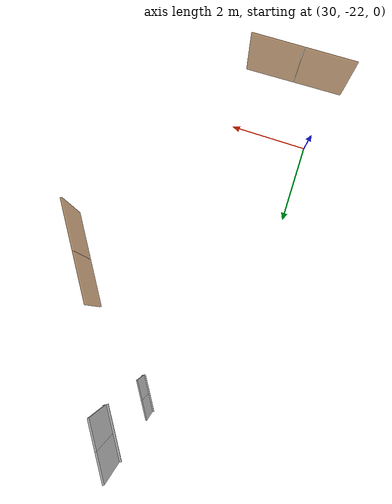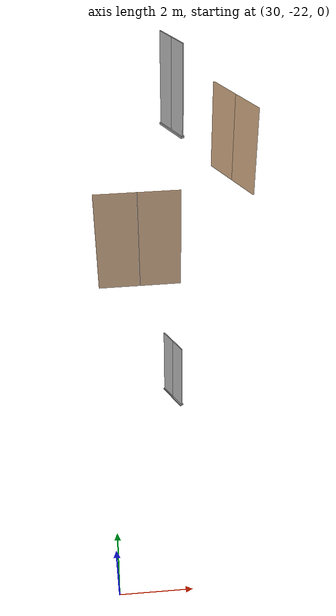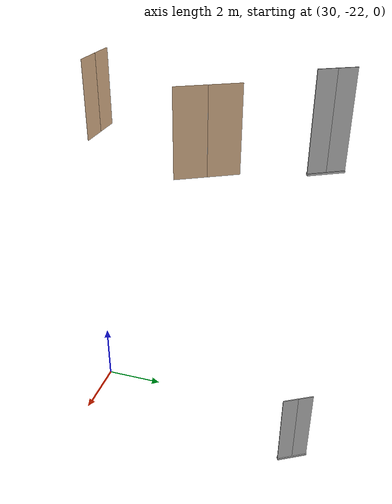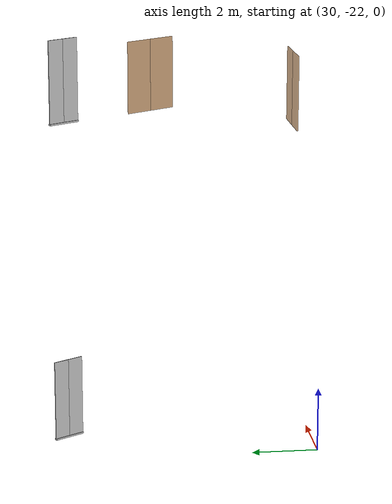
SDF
<sdf version="1.7">
 <world name="sim_world">
  <model name="L3_part5_2">
   <pose>30.878555559378373 -21.20493102822983 10.0 0 0 -3.120629776813505</pose>
   <link name="right">
    <pose>0.4216934099719255 0 1.11 0 0 0</pose>
    <visual name="right_visual">
     <geometry><box><size>0.833386819943851 0.03 2.2</size></box></geometry>
     <material>
      <ambient>0.5 0.25 0 0.6</ambient>
      <diffuse>0.5 0.25 0 0.6</diffuse>
      <pbr><metal><metalness>0.0</metalness></metal></pbr>
     </material>
    </visual>
    <collision name="right_collision">
     <geometry><box><size>0.833386819943851 0.03 2.2</size></box></geometry>
     <surface><contact><collide_bitmask>0x02</collide_bitmask></contact></surface>
    </collision>
    <inertial>
     <mass>50.0</mass>
     <inertia><ixx>20.17041666666667</ixx><iyy>23.060556631900525</iyy><izz>2.897639965233853</izz></inertia>
    </inertial>
   </link>
   <joint name="right_joint" type="revolute">
    <parent>world</parent>
    <child>right</child>
    <axis><xyz>0 0 1</xyz><limit><lower>0</lower><upper>1.57</upper></limit></axis>
    <pose>0.4216934099719255 0 0 0 0 0</pose>
   </joint>
   <link name="left">
    <pose>-0.4216934099719255 0 1.11 0 0 0</pose>
    <visual name="left_visual">
     <geometry><box><size>0.833386819943851 0.03 2.2</size></box></geometry>
     <material>
      <ambient>0.5 0.25 0 0.6</ambient>
      <diffuse>0.5 0.25 0 0.6</diffuse>
      <pbr><metal><metalness>0.0</metalness></metal></pbr>
     </material>
    </visual>
    <collision name="left_collision">
     <geometry><box><size>0.833386819943851 0.03 2.2</size></box></geometry>
     <surface><contact><collide_bitmask>0x02</collide_bitmask></contact></surface>
    </collision>
    <inertial>
     <mass>50.0</mass>
     <inertia><ixx>20.17041666666667</ixx><iyy>23.060556631900525</iyy><izz>2.897639965233853</izz></inertia>
    </inertial>
   </link>
   <joint name="left_joint" type="revolute">
    <parent>world</parent>
    <child>left</child>
    <axis><xyz>0 0 1</xyz><limit><lower>-1.57</lower><upper>0</upper></limit></axis>
    <pose>-0.4216934099719255 0 0 0 0 0</pose>
   </joint>
   <plugin name="register_component" filename="libregister_component.so">
    <component name="Door">
     <v_max_door>0.5</v_max_door>
     <a_max_door>0.3</a_max_door>
     <a_nom_door>0.15</a_nom_door>
     <dx_min_door>0.01</dx_min_door>
     <f_max_door>500.0</f_max_door>
     <ros_interface>true</ros_interface>
     <door name="L3_part5_2" type="DoubleSwingDoor" left_joint_name="left_joint" right_joint_name="right_joint"/>
    </component>
   </plugin>
  </model>
  <model name="L3_part5_3">
   <pose>33.311514173469774 -17.240855171249027 10.0 0 0 2.0969334913966207</pose>
   <link name="right">
    <pose>0.4157660587721567 0 1.11 0 0 0</pose>
    <visual name="right_visual">
     <geometry><box><size>0.8215321175443134 0.03 2.2</size></box></geometry>
     <material>
      <ambient>0.5 0.25 0 0.6</ambient>
      <diffuse>0.5 0.25 0 0.6</diffuse>
      <pbr><metal><metalness>0.0</metalness></metal></pbr>
     </material>
    </visual>
    <collision name="right_collision">
     <geometry><box><size>0.8215321175443134 0.03 2.2</size></box></geometry>
     <surface><contact><collide_bitmask>0x02</collide_bitmask></contact></surface>
    </collision>
    <inertial>
     <mass>50.0</mass>
     <inertia><ixx>20.17041666666667</ixx><iyy>22.978812583986855</iyy><izz>2.815895917320182</izz></inertia>
    </inertial>
   </link>
   <joint name="right_joint" type="revolute">
    <parent>world</parent>
    <child>right</child>
    <axis><xyz>0 0 -1</xyz><limit><lower>0</lower><upper>1.57</upper></limit></axis>
    <pose>0.4157660587721567 0 0 0 0 0</pose>
   </joint>
   <link name="left">
    <pose>-0.4157660587721567 0 1.11 0 0 0</pose>
    <visual name="left_visual">
     <geometry><box><size>0.8215321175443134 0.03 2.2</size></box></geometry>
     <material>
      <ambient>0.5 0.25 0 0.6</ambient>
      <diffuse>0.5 0.25 0 0.6</diffuse>
      <pbr><metal><metalness>0.0</metalness></metal></pbr>
     </material>
    </visual>
    <collision name="left_collision">
     <geometry><box><size>0.8215321175443134 0.03 2.2</size></box></geometry>
     <surface><contact><collide_bitmask>0x02</collide_bitmask></contact></surface>
    </collision>
    <inertial>
     <mass>50.0</mass>
     <inertia><ixx>20.17041666666667</ixx><iyy>22.978812583986855</iyy><izz>2.815895917320182</izz></inertia>
    </inertial>
   </link>
   <joint name="left_joint" type="revolute">
    <parent>world</parent>
    <child>left</child>
    <axis><xyz>0 0 -1</xyz><limit><lower>-1.57</lower><upper>0</upper></limit></axis>
    <pose>-0.4157660587721567 0 0 0 0 0</pose>
   </joint>
   <plugin name="register_component" filename="libregister_component.so">
    <component name="Door">
     <v_max_door>0.5</v_max_door>
     <a_max_door>0.3</a_max_door>
     <a_nom_door>0.15</a_nom_door>
     <dx_min_door>0.01</dx_min_door>
     <f_max_door>500.0</f_max_door>
     <ros_interface>true</ros_interface>
     <door name="L3_part5_3" type="DoubleSwingDoor" left_joint_name="left_joint" right_joint_name="right_joint"/>
    </component>
   </plugin>
  </model>
  <model name="ShaftDoor_lift1_L2_entrada_lift1_doors">
   <pose>32.074992194929564 -14.53258134317333 0.0 0 0 2.1</pose>
   <link name="right_door">
    <pose>0.25 0 1.25 0 0 0</pose>
    <visual name="right_door_visual">
     <geometry><box><size>0.5 0.03 2.5</size></box></geometry>
     <material>
      <ambient>0.5 0.5 0.5 1</ambient>
      <diffuse>0.7 0.7 0.7 1</diffuse>
      <specular>0.6 0.6 0.6 1</specular>
      <emissive>0.1 0.1 0.1 1</emissive>
     </material>
    </visual>
    <collision name="right_door_collision">
     <geometry><box><size>0.5 0.03 2.5</size></box></geometry>
     <surface><contact><collide_bitmask>0x02</collide_bitmask></contact></surface>
    </collision>
   </link>
   <link name="left_door">
    <pose>-0.25 0 1.25 0 0 0</pose>
    <visual name="left_door_visual">
     <geometry><box><size>0.5 0.03 2.5</size></box></geometry>
     <material>
      <ambient>0.5 0.5 0.5 1</ambient>
      <diffuse>0.7 0.7 0.7 1</diffuse>
      <specular>0.6 0.6 0.6 1</specular>
      <emissive>0.1 0.1 0.1 1</emissive>
     </material>
    </visual>
    <collision name="left_door_collision">
     <geometry><box><size>0.5 0.03 2.5</size></box></geometry>
     <surface><contact><collide_bitmask>0x02</collide_bitmask></contact></surface>
    </collision>
   </link>
   <joint name="right_joint" type="prismatic">
    <parent>world</parent>
    <child>right_door</child>
    <axis><xyz>1 0 0</xyz><limit><lower>0</lower><upper>0.5</upper></limit></axis>
   </joint>
   <joint name="left_joint" type="prismatic">
    <parent>world</parent>
    <child>left_door</child>
    <axis><xyz>1 0 0</xyz><limit><lower>-0.5</lower><upper>0</upper></limit></axis>
   </joint>
   <link name="ramp">
    <pose>0 0 -0.025 0 0 0</pose>
    <visual name="ramp_visual">
     <geometry><box><size>1.0 0.1 0.05</size></box></geometry>
     <material>
      <ambient>0.5 0.5 0.5 1</ambient>
      <diffuse>0.7 0.7 0.7 1</diffuse>
      <specular>0.6 0.6 0.6 1</specular>
      <emissive>0.1 0.1 0.1 1</emissive>
     </material>
    </visual>
    <collision name="ramp_collision">
     <geometry><box><size>1.0 0.1 0.05</size></box></geometry>
     <surface><contact><collide_bitmask>0x02</collide_bitmask></contact></surface>
    </collision>
   </link>
   <joint name="ramp_joint" type="fixed"><parent>world</parent><child>ramp</child></joint>
   <plugin name="register_component" filename="libregister_component.so">
    <component name="Door">
     <v_max_door>0.3</v_max_door>
     <a_max_door>0.2</a_max_door>
     <a_nom_door>0.1</a_nom_door>
     <dx_min_door>0.0001</dx_min_door>
     <f_max_door>35.0</f_max_door>
     <door left_joint_name="left_joint" name="ShaftDoor_lift1_L2_entrada_lift1_doors" right_joint_name="right_joint" type="DoubleSlidingDoor"/>
    </component>
   </plugin>
  </model>
  <model name="ShaftDoor_lift1_L3_lift1_doors">
   <pose>32.074992194929564 -14.53258134317333 10.0 0 0 2.1</pose>
   <link name="right_door">
    <pose>0.25 0 1.25 0 0 0</pose>
    <visual name="right_door_visual">
     <geometry><box><size>0.5 0.03 2.5</size></box></geometry>
     <material>
      <ambient>0.5 0.5 0.5 1</ambient>
      <diffuse>0.7 0.7 0.7 1</diffuse>
      <specular>0.6 0.6 0.6 1</specular>
      <emissive>0.1 0.1 0.1 1</emissive>
     </material>
    </visual>
    <collision name="right_door_collision">
     <geometry><box><size>0.5 0.03 2.5</size></box></geometry>
     <surface><contact><collide_bitmask>0x02</collide_bitmask></contact></surface>
    </collision>
   </link>
   <link name="left_door">
    <pose>-0.25 0 1.25 0 0 0</pose>
    <visual name="left_door_visual">
     <geometry><box><size>0.5 0.03 2.5</size></box></geometry>
     <material>
      <ambient>0.5 0.5 0.5 1</ambient>
      <diffuse>0.7 0.7 0.7 1</diffuse>
      <specular>0.6 0.6 0.6 1</specular>
      <emissive>0.1 0.1 0.1 1</emissive>
     </material>
    </visual>
    <collision name="left_door_collision">
     <geometry><box><size>0.5 0.03 2.5</size></box></geometry>
     <surface><contact><collide_bitmask>0x02</collide_bitmask></contact></surface>
    </collision>
   </link>
   <joint name="right_joint" type="prismatic">
    <parent>world</parent>
    <child>right_door</child>
    <axis><xyz>1 0 0</xyz><limit><lower>0</lower><upper>0.5</upper></limit></axis>
   </joint>
   <joint name="left_joint" type="prismatic">
    <parent>world</parent>
    <child>left_door</child>
    <axis><xyz>1 0 0</xyz><limit><lower>-0.5</lower><upper>0</upper></limit></axis>
   </joint>
   <link name="ramp">
    <pose>0 0 -0.025 0 0 0</pose>
    <visual name="ramp_visual">
     <geometry><box><size>1.0 0.1 0.05</size></box></geometry>
     <material>
      <ambient>0.5 0.5 0.5 1</ambient>
      <diffuse>0.7 0.7 0.7 1</diffuse>
      <specular>0.6 0.6 0.6 1</specular>
      <emissive>0.1 0.1 0.1 1</emissive>
     </material>
    </visual>
    <collision name="ramp_collision">
     <geometry><box><size>1.0 0.1 0.05</size></box></geometry>
     <surface><contact><collide_bitmask>0x02</collide_bitmask></contact></surface>
    </collision>
   </link>
   <joint name="ramp_joint" type="fixed"><parent>world</parent><child>ramp</child></joint>
   <plugin name="register_component" filename="libregister_component.so">
    <component name="Door">
     <v_max_door>0.3</v_max_door>
     <a_max_door>0.2</a_max_door>
     <a_nom_door>0.1</a_nom_door>
     <dx_min_door>0.0001</dx_min_door>
     <f_max_door>35.0</f_max_door>
     <door left_joint_name="left_joint" name="ShaftDoor_lift1_L3_lift1_doors" right_joint_name="right_joint" type="DoubleSlidingDoor"/>
    </component>
   </plugin>
  </model>
 </world>
</sdf>
